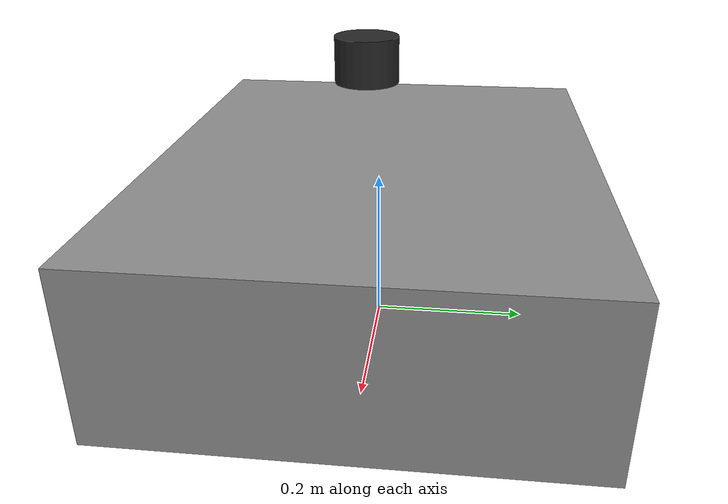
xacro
<?xml version="1.0"?>

<robot xmlns:xacro="http://www.ros.org/wiki/xacro" name="axel_agv">
  <material name="body_color">
    <color rgba="0.55 0.55 0.55 1.0"/>
  </material>

  <material name="lidar_color">
    <color rgba="0.15 0.15 0.15 1.0"/>
  </material>

  <link name="base_footprint"/>

  <joint name="base_footprint_to_base_link" type="fixed">
    <parent link="base_footprint"/>
    <child link="base_link"/>
    <origin xyz="0.0 0.0 0.130" rpy="0.0 0.0 0.0"/>
  </joint>

  <link name="base_link">
    <visual>
      <geometry>
        <box size="0.700 0.560 0.210"/>
      </geometry>
      <material name="body_color"/>
    </visual>
    <collision>
      <geometry>
        <box size="0.700 0.560 0.210"/>
      </geometry>
    </collision>
  </link>

  <joint name="base_link_to_laser_frame" type="fixed">
    <parent link="base_link"/>
    <child link="laser_frame"/>
    <origin xyz="0.120 0.0 0.255" rpy="0.0 0.0 3.141592653589793"/>
  </joint>

  <link name="laser_frame">
    <visual>
      <geometry>
        <cylinder radius="0.035" length="0.050"/>
      </geometry>
      <material name="lidar_color"/>
    </visual>
  </link>
</robot>
